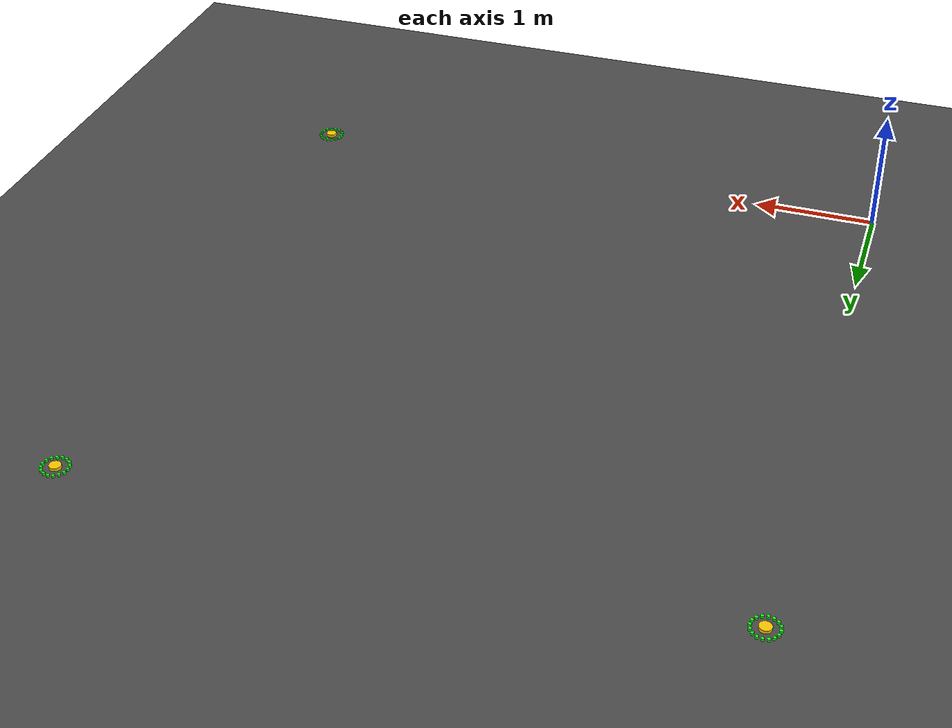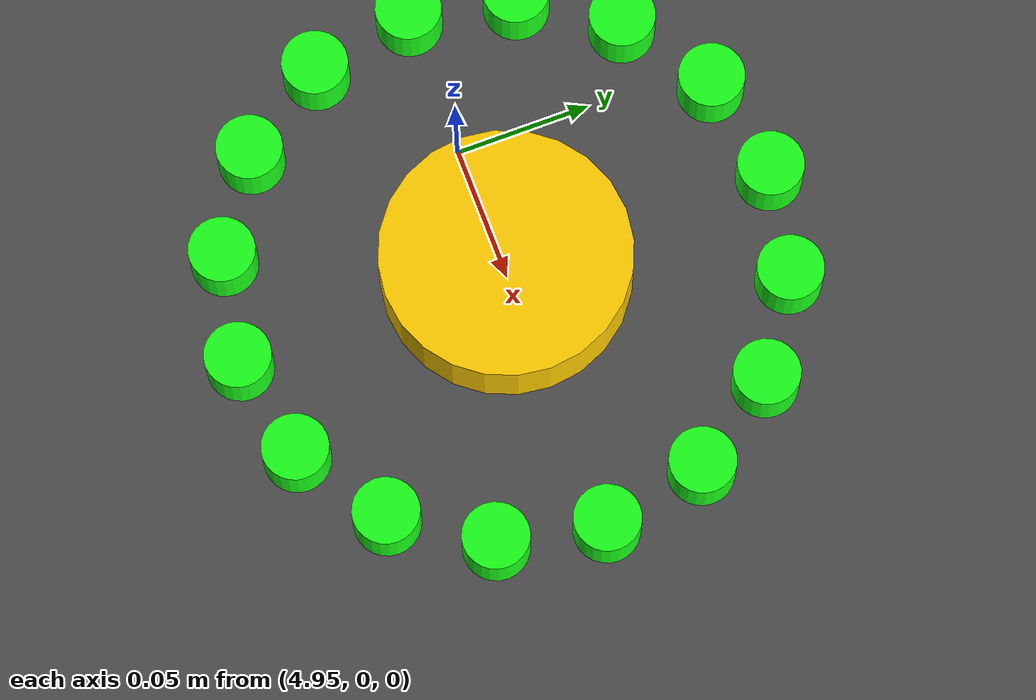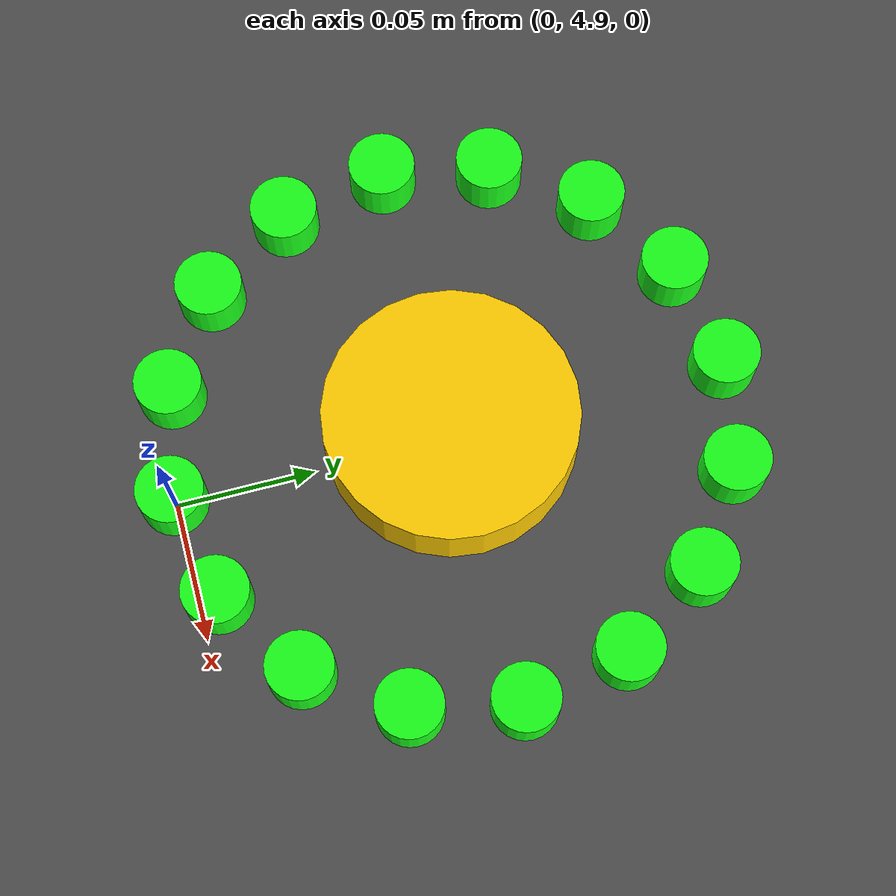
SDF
<?xml version="1.0"?>
<sdf version="1.6">
  <world name="tri_x_asphalt">
    <gravity>0 0 -9.81</gravity>
    <physics name="default_physics" type="ode">
      <max_step_size>0.001</max_step_size>
      <real_time_update_rate>1000</real_time_update_rate>
    </physics>
    <scene>
      <ambient>0.42 0.45 0.50 1</ambient>
      <background>0.70 0.78 0.88 1</background>
      <shadows>true</shadows>
      <grid>false</grid>
    </scene>
    <include><uri>model://sun</uri></include>

    <!-- Asfalto texturizado com os materiais que acompanham o Gazebo Classic. -->
    <model name="asphalt_ground">
      <static>true</static>
      <link name="ground_link">
        <collision name="ground_collision">
          <geometry><plane><normal>0 0 1</normal><size>100 100</size></plane></geometry>
          <surface><friction><ode><mu>1.5</mu><mu2>1.5</mu2></ode></friction></surface>
        </collision>
        <visual name="asphalt_visual">
          <cast_shadows>false</cast_shadows>
          <geometry><plane><normal>0 0 1</normal><size>100 100</size></plane></geometry>
          <material>
            <script>
              <uri>file://media/materials/scripts/gazebo.material</uri>
              <name>Gazebo/Road</name>
            </script>
            <ambient>0.75 0.75 0.75 1</ambient>
            <diffuse>0.75 0.75 0.75 1</diffuse>
          </material>
        </visual>
      </link>
    </model>

    <!-- Centro do waypoint e anel pontilhado: o controlador troca de alvo a 0.10 m. -->
    <model name="mission_waypoint_guides">
      <static>true</static>
      <link name="ground_markers">
        <visual name="waypoint_1">
          <pose>5 0 0.018 0 0 0</pose>
          <geometry><cylinder><radius>0.045</radius><length>0.025</length></cylinder></geometry>
          <material><ambient>1 0.8 0 1</ambient><diffuse>1 0.8 0 1</diffuse><emissive>0.75 0.48 0 1</emissive></material>
        </visual>
        <visual name="waypoint_1_radius_dot_1">
          <pose>5.10000 0.00000 0.014 0 0 0</pose>
          <geometry><cylinder><radius>0.012</radius><length>0.018</length></cylinder></geometry>
          <material><ambient>0.1 1 0.1 1</ambient><diffuse>0.1 1 0.1 1</diffuse><emissive>0.05 0.65 0.05 1</emissive></material>
        </visual>
        <visual name="waypoint_1_radius_dot_2">
          <pose>5.09239 0.03827 0.014 0 0 0</pose>
          <geometry><cylinder><radius>0.012</radius><length>0.018</length></cylinder></geometry>
          <material><ambient>0.1 1 0.1 1</ambient><diffuse>0.1 1 0.1 1</diffuse><emissive>0.05 0.65 0.05 1</emissive></material>
        </visual>
        <visual name="waypoint_1_radius_dot_3">
          <pose>5.07071 0.07071 0.014 0 0 0</pose>
          <geometry><cylinder><radius>0.012</radius><length>0.018</length></cylinder></geometry>
          <material><ambient>0.1 1 0.1 1</ambient><diffuse>0.1 1 0.1 1</diffuse><emissive>0.05 0.65 0.05 1</emissive></material>
        </visual>
        <visual name="waypoint_1_radius_dot_4">
          <pose>5.03827 0.09239 0.014 0 0 0</pose>
          <geometry><cylinder><radius>0.012</radius><length>0.018</length></cylinder></geometry>
          <material><ambient>0.1 1 0.1 1</ambient><diffuse>0.1 1 0.1 1</diffuse><emissive>0.05 0.65 0.05 1</emissive></material>
        </visual>
        <visual name="waypoint_1_radius_dot_5">
          <pose>5.00000 0.10000 0.014 0 0 0</pose>
          <geometry><cylinder><radius>0.012</radius><length>0.018</length></cylinder></geometry>
          <material><ambient>0.1 1 0.1 1</ambient><diffuse>0.1 1 0.1 1</diffuse><emissive>0.05 0.65 0.05 1</emissive></material>
        </visual>
        <visual name="waypoint_1_radius_dot_6">
          <pose>4.96173 0.09239 0.014 0 0 0</pose>
          <geometry><cylinder><radius>0.012</radius><length>0.018</length></cylinder></geometry>
          <material><ambient>0.1 1 0.1 1</ambient><diffuse>0.1 1 0.1 1</diffuse><emissive>0.05 0.65 0.05 1</emissive></material>
        </visual>
        <visual name="waypoint_1_radius_dot_7">
          <pose>4.92929 0.07071 0.014 0 0 0</pose>
          <geometry><cylinder><radius>0.012</radius><length>0.018</length></cylinder></geometry>
          <material><ambient>0.1 1 0.1 1</ambient><diffuse>0.1 1 0.1 1</diffuse><emissive>0.05 0.65 0.05 1</emissive></material>
        </visual>
        <visual name="waypoint_1_radius_dot_8">
          <pose>4.90761 0.03827 0.014 0 0 0</pose>
          <geometry><cylinder><radius>0.012</radius><length>0.018</length></cylinder></geometry>
          <material><ambient>0.1 1 0.1 1</ambient><diffuse>0.1 1 0.1 1</diffuse><emissive>0.05 0.65 0.05 1</emissive></material>
        </visual>
        <visual name="waypoint_1_radius_dot_9">
          <pose>4.90000 0.00000 0.014 0 0 0</pose>
          <geometry><cylinder><radius>0.012</radius><length>0.018</length></cylinder></geometry>
          <material><ambient>0.1 1 0.1 1</ambient><diffuse>0.1 1 0.1 1</diffuse><emissive>0.05 0.65 0.05 1</emissive></material>
        </visual>
        <visual name="waypoint_1_radius_dot_10">
          <pose>4.90761 -0.03827 0.014 0 0 0</pose>
          <geometry><cylinder><radius>0.012</radius><length>0.018</length></cylinder></geometry>
          <material><ambient>0.1 1 0.1 1</ambient><diffuse>0.1 1 0.1 1</diffuse><emissive>0.05 0.65 0.05 1</emissive></material>
        </visual>
        <visual name="waypoint_1_radius_dot_11">
          <pose>4.92929 -0.07071 0.014 0 0 0</pose>
          <geometry><cylinder><radius>0.012</radius><length>0.018</length></cylinder></geometry>
          <material><ambient>0.1 1 0.1 1</ambient><diffuse>0.1 1 0.1 1</diffuse><emissive>0.05 0.65 0.05 1</emissive></material>
        </visual>
        <visual name="waypoint_1_radius_dot_12">
          <pose>4.96173 -0.09239 0.014 0 0 0</pose>
          <geometry><cylinder><radius>0.012</radius><length>0.018</length></cylinder></geometry>
          <material><ambient>0.1 1 0.1 1</ambient><diffuse>0.1 1 0.1 1</diffuse><emissive>0.05 0.65 0.05 1</emissive></material>
        </visual>
        <visual name="waypoint_1_radius_dot_13">
          <pose>5.00000 -0.10000 0.014 0 0 0</pose>
          <geometry><cylinder><radius>0.012</radius><length>0.018</length></cylinder></geometry>
          <material><ambient>0.1 1 0.1 1</ambient><diffuse>0.1 1 0.1 1</diffuse><emissive>0.05 0.65 0.05 1</emissive></material>
        </visual>
        <visual name="waypoint_1_radius_dot_14">
          <pose>5.03827 -0.09239 0.014 0 0 0</pose>
          <geometry><cylinder><radius>0.012</radius><length>0.018</length></cylinder></geometry>
          <material><ambient>0.1 1 0.1 1</ambient><diffuse>0.1 1 0.1 1</diffuse><emissive>0.05 0.65 0.05 1</emissive></material>
        </visual>
        <visual name="waypoint_1_radius_dot_15">
          <pose>5.07071 -0.07071 0.014 0 0 0</pose>
          <geometry><cylinder><radius>0.012</radius><length>0.018</length></cylinder></geometry>
          <material><ambient>0.1 1 0.1 1</ambient><diffuse>0.1 1 0.1 1</diffuse><emissive>0.05 0.65 0.05 1</emissive></material>
        </visual>
        <visual name="waypoint_1_radius_dot_16">
          <pose>5.09239 -0.03827 0.014 0 0 0</pose>
          <geometry><cylinder><radius>0.012</radius><length>0.018</length></cylinder></geometry>
          <material><ambient>0.1 1 0.1 1</ambient><diffuse>0.1 1 0.1 1</diffuse><emissive>0.05 0.65 0.05 1</emissive></material>
        </visual>
        <visual name="waypoint_2">
          <pose>5 5 0.018 0 0 0</pose>
          <geometry><cylinder><radius>0.045</radius><length>0.025</length></cylinder></geometry>
          <material><ambient>1 0.8 0 1</ambient><diffuse>1 0.8 0 1</diffuse><emissive>0.75 0.48 0 1</emissive></material>
        </visual>
        <visual name="waypoint_2_radius_dot_1">
          <pose>5.10000 5.00000 0.014 0 0 0</pose>
          <geometry><cylinder><radius>0.012</radius><length>0.018</length></cylinder></geometry>
          <material><ambient>0.1 1 0.1 1</ambient><diffuse>0.1 1 0.1 1</diffuse><emissive>0.05 0.65 0.05 1</emissive></material>
        </visual>
        <visual name="waypoint_2_radius_dot_2">
          <pose>5.09239 5.03827 0.014 0 0 0</pose>
          <geometry><cylinder><radius>0.012</radius><length>0.018</length></cylinder></geometry>
          <material><ambient>0.1 1 0.1 1</ambient><diffuse>0.1 1 0.1 1</diffuse><emissive>0.05 0.65 0.05 1</emissive></material>
        </visual>
        <visual name="waypoint_2_radius_dot_3">
          <pose>5.07071 5.07071 0.014 0 0 0</pose>
          <geometry><cylinder><radius>0.012</radius><length>0.018</length></cylinder></geometry>
          <material><ambient>0.1 1 0.1 1</ambient><diffuse>0.1 1 0.1 1</diffuse><emissive>0.05 0.65 0.05 1</emissive></material>
        </visual>
        <visual name="waypoint_2_radius_dot_4">
          <pose>5.03827 5.09239 0.014 0 0 0</pose>
          <geometry><cylinder><radius>0.012</radius><length>0.018</length></cylinder></geometry>
          <material><ambient>0.1 1 0.1 1</ambient><diffuse>0.1 1 0.1 1</diffuse><emissive>0.05 0.65 0.05 1</emissive></material>
        </visual>
        <visual name="waypoint_2_radius_dot_5">
          <pose>5.00000 5.10000 0.014 0 0 0</pose>
          <geometry><cylinder><radius>0.012</radius><length>0.018</length></cylinder></geometry>
          <material><ambient>0.1 1 0.1 1</ambient><diffuse>0.1 1 0.1 1</diffuse><emissive>0.05 0.65 0.05 1</emissive></material>
        </visual>
        <visual name="waypoint_2_radius_dot_6">
          <pose>4.96173 5.09239 0.014 0 0 0</pose>
          <geometry><cylinder><radius>0.012</radius><length>0.018</length></cylinder></geometry>
          <material><ambient>0.1 1 0.1 1</ambient><diffuse>0.1 1 0.1 1</diffuse><emissive>0.05 0.65 0.05 1</emissive></material>
        </visual>
        <visual name="waypoint_2_radius_dot_7">
          <pose>4.92929 5.07071 0.014 0 0 0</pose>
          <geometry><cylinder><radius>0.012</radius><length>0.018</length></cylinder></geometry>
          <material><ambient>0.1 1 0.1 1</ambient><diffuse>0.1 1 0.1 1</diffuse><emissive>0.05 0.65 0.05 1</emissive></material>
        </visual>
        <visual name="waypoint_2_radius_dot_8">
          <pose>4.90761 5.03827 0.014 0 0 0</pose>
          <geometry><cylinder><radius>0.012</radius><length>0.018</length></cylinder></geometry>
          <material><ambient>0.1 1 0.1 1</ambient><diffuse>0.1 1 0.1 1</diffuse><emissive>0.05 0.65 0.05 1</emissive></material>
        </visual>
        <visual name="waypoint_2_radius_dot_9">
          <pose>4.90000 5.00000 0.014 0 0 0</pose>
          <geometry><cylinder><radius>0.012</radius><length>0.018</length></cylinder></geometry>
          <material><ambient>0.1 1 0.1 1</ambient><diffuse>0.1 1 0.1 1</diffuse><emissive>0.05 0.65 0.05 1</emissive></material>
        </visual>
        <visual name="waypoint_2_radius_dot_10">
          <pose>4.90761 4.96173 0.014 0 0 0</pose>
          <geometry><cylinder><radius>0.012</radius><length>0.018</length></cylinder></geometry>
          <material><ambient>0.1 1 0.1 1</ambient><diffuse>0.1 1 0.1 1</diffuse><emissive>0.05 0.65 0.05 1</emissive></material>
        </visual>
        <visual name="waypoint_2_radius_dot_11">
          <pose>4.92929 4.92929 0.014 0 0 0</pose>
          <geometry><cylinder><radius>0.012</radius><length>0.018</length></cylinder></geometry>
          <material><ambient>0.1 1 0.1 1</ambient><diffuse>0.1 1 0.1 1</diffuse><emissive>0.05 0.65 0.05 1</emissive></material>
        </visual>
        <visual name="waypoint_2_radius_dot_12">
          <pose>4.96173 4.90761 0.014 0 0 0</pose>
          <geometry><cylinder><radius>0.012</radius><length>0.018</length></cylinder></geometry>
          <material><ambient>0.1 1 0.1 1</ambient><diffuse>0.1 1 0.1 1</diffuse><emissive>0.05 0.65 0.05 1</emissive></material>
        </visual>
        <visual name="waypoint_2_radius_dot_13">
          <pose>5.00000 4.90000 0.014 0 0 0</pose>
          <geometry><cylinder><radius>0.012</radius><length>0.018</length></cylinder></geometry>
          <material><ambient>0.1 1 0.1 1</ambient><diffuse>0.1 1 0.1 1</diffuse><emissive>0.05 0.65 0.05 1</emissive></material>
        </visual>
        <visual name="waypoint_2_radius_dot_14">
          <pose>5.03827 4.90761 0.014 0 0 0</pose>
          <geometry><cylinder><radius>0.012</radius><length>0.018</length></cylinder></geometry>
          <material><ambient>0.1 1 0.1 1</ambient><diffuse>0.1 1 0.1 1</diffuse><emissive>0.05 0.65 0.05 1</emissive></material>
        </visual>
        <visual name="waypoint_2_radius_dot_15">
          <pose>5.07071 4.92929 0.014 0 0 0</pose>
          <geometry><cylinder><radius>0.012</radius><length>0.018</length></cylinder></geometry>
          <material><ambient>0.1 1 0.1 1</ambient><diffuse>0.1 1 0.1 1</diffuse><emissive>0.05 0.65 0.05 1</emissive></material>
        </visual>
        <visual name="waypoint_2_radius_dot_16">
          <pose>5.09239 4.96173 0.014 0 0 0</pose>
          <geometry><cylinder><radius>0.012</radius><length>0.018</length></cylinder></geometry>
          <material><ambient>0.1 1 0.1 1</ambient><diffuse>0.1 1 0.1 1</diffuse><emissive>0.05 0.65 0.05 1</emissive></material>
        </visual>
        <visual name="waypoint_3">
          <pose>0 5 0.018 0 0 0</pose>
          <geometry><cylinder><radius>0.045</radius><length>0.025</length></cylinder></geometry>
          <material><ambient>1 0.8 0 1</ambient><diffuse>1 0.8 0 1</diffuse><emissive>0.75 0.48 0 1</emissive></material>
        </visual>
        <visual name="waypoint_3_radius_dot_1">
          <pose>0.10000 5.00000 0.014 0 0 0</pose>
          <geometry><cylinder><radius>0.012</radius><length>0.018</length></cylinder></geometry>
          <material><ambient>0.1 1 0.1 1</ambient><diffuse>0.1 1 0.1 1</diffuse><emissive>0.05 0.65 0.05 1</emissive></material>
        </visual>
        <visual name="waypoint_3_radius_dot_2">
          <pose>0.09239 5.03827 0.014 0 0 0</pose>
          <geometry><cylinder><radius>0.012</radius><length>0.018</length></cylinder></geometry>
          <material><ambient>0.1 1 0.1 1</ambient><diffuse>0.1 1 0.1 1</diffuse><emissive>0.05 0.65 0.05 1</emissive></material>
        </visual>
        <visual name="waypoint_3_radius_dot_3">
          <pose>0.07071 5.07071 0.014 0 0 0</pose>
          <geometry><cylinder><radius>0.012</radius><length>0.018</length></cylinder></geometry>
          <material><ambient>0.1 1 0.1 1</ambient><diffuse>0.1 1 0.1 1</diffuse><emissive>0.05 0.65 0.05 1</emissive></material>
        </visual>
        <visual name="waypoint_3_radius_dot_4">
          <pose>0.03827 5.09239 0.014 0 0 0</pose>
          <geometry><cylinder><radius>0.012</radius><length>0.018</length></cylinder></geometry>
          <material><ambient>0.1 1 0.1 1</ambient><diffuse>0.1 1 0.1 1</diffuse><emissive>0.05 0.65 0.05 1</emissive></material>
        </visual>
        <visual name="waypoint_3_radius_dot_5">
          <pose>0.00000 5.10000 0.014 0 0 0</pose>
          <geometry><cylinder><radius>0.012</radius><length>0.018</length></cylinder></geometry>
          <material><ambient>0.1 1 0.1 1</ambient><diffuse>0.1 1 0.1 1</diffuse><emissive>0.05 0.65 0.05 1</emissive></material>
        </visual>
        <visual name="waypoint_3_radius_dot_6">
          <pose>-0.03827 5.09239 0.014 0 0 0</pose>
          <geometry><cylinder><radius>0.012</radius><length>0.018</length></cylinder></geometry>
          <material><ambient>0.1 1 0.1 1</ambient><diffuse>0.1 1 0.1 1</diffuse><emissive>0.05 0.65 0.05 1</emissive></material>
        </visual>
        <visual name="waypoint_3_radius_dot_7">
          <pose>-0.07071 5.07071 0.014 0 0 0</pose>
          <geometry><cylinder><radius>0.012</radius><length>0.018</length></cylinder></geometry>
          <material><ambient>0.1 1 0.1 1</ambient><diffuse>0.1 1 0.1 1</diffuse><emissive>0.05 0.65 0.05 1</emissive></material>
        </visual>
        <visual name="waypoint_3_radius_dot_8">
          <pose>-0.09239 5.03827 0.014 0 0 0</pose>
          <geometry><cylinder><radius>0.012</radius><length>0.018</length></cylinder></geometry>
          <material><ambient>0.1 1 0.1 1</ambient><diffuse>0.1 1 0.1 1</diffuse><emissive>0.05 0.65 0.05 1</emissive></material>
        </visual>
        <visual name="waypoint_3_radius_dot_9">
          <pose>-0.10000 5.00000 0.014 0 0 0</pose>
          <geometry><cylinder><radius>0.012</radius><length>0.018</length></cylinder></geometry>
          <material><ambient>0.1 1 0.1 1</ambient><diffuse>0.1 1 0.1 1</diffuse><emissive>0.05 0.65 0.05 1</emissive></material>
        </visual>
        <visual name="waypoint_3_radius_dot_10">
          <pose>-0.09239 4.96173 0.014 0 0 0</pose>
          <geometry><cylinder><radius>0.012</radius><length>0.018</length></cylinder></geometry>
          <material><ambient>0.1 1 0.1 1</ambient><diffuse>0.1 1 0.1 1</diffuse><emissive>0.05 0.65 0.05 1</emissive></material>
        </visual>
        <visual name="waypoint_3_radius_dot_11">
          <pose>-0.07071 4.92929 0.014 0 0 0</pose>
          <geometry><cylinder><radius>0.012</radius><length>0.018</length></cylinder></geometry>
          <material><ambient>0.1 1 0.1 1</ambient><diffuse>0.1 1 0.1 1</diffuse><emissive>0.05 0.65 0.05 1</emissive></material>
        </visual>
        <visual name="waypoint_3_radius_dot_12">
          <pose>-0.03827 4.90761 0.014 0 0 0</pose>
          <geometry><cylinder><radius>0.012</radius><length>0.018</length></cylinder></geometry>
          <material><ambient>0.1 1 0.1 1</ambient><diffuse>0.1 1 0.1 1</diffuse><emissive>0.05 0.65 0.05 1</emissive></material>
        </visual>
        <visual name="waypoint_3_radius_dot_13">
          <pose>-0.00000 4.90000 0.014 0 0 0</pose>
          <geometry><cylinder><radius>0.012</radius><length>0.018</length></cylinder></geometry>
          <material><ambient>0.1 1 0.1 1</ambient><diffuse>0.1 1 0.1 1</diffuse><emissive>0.05 0.65 0.05 1</emissive></material>
        </visual>
        <visual name="waypoint_3_radius_dot_14">
          <pose>0.03827 4.90761 0.014 0 0 0</pose>
          <geometry><cylinder><radius>0.012</radius><length>0.018</length></cylinder></geometry>
          <material><ambient>0.1 1 0.1 1</ambient><diffuse>0.1 1 0.1 1</diffuse><emissive>0.05 0.65 0.05 1</emissive></material>
        </visual>
        <visual name="waypoint_3_radius_dot_15">
          <pose>0.07071 4.92929 0.014 0 0 0</pose>
          <geometry><cylinder><radius>0.012</radius><length>0.018</length></cylinder></geometry>
          <material><ambient>0.1 1 0.1 1</ambient><diffuse>0.1 1 0.1 1</diffuse><emissive>0.05 0.65 0.05 1</emissive></material>
        </visual>
        <visual name="waypoint_3_radius_dot_16">
          <pose>0.09239 4.96173 0.014 0 0 0</pose>
          <geometry><cylinder><radius>0.012</radius><length>0.018</length></cylinder></geometry>
          <material><ambient>0.1 1 0.1 1</ambient><diffuse>0.1 1 0.1 1</diffuse><emissive>0.05 0.65 0.05 1</emissive></material>
        </visual>
      </link>
    </model>
  </world>
</sdf>
